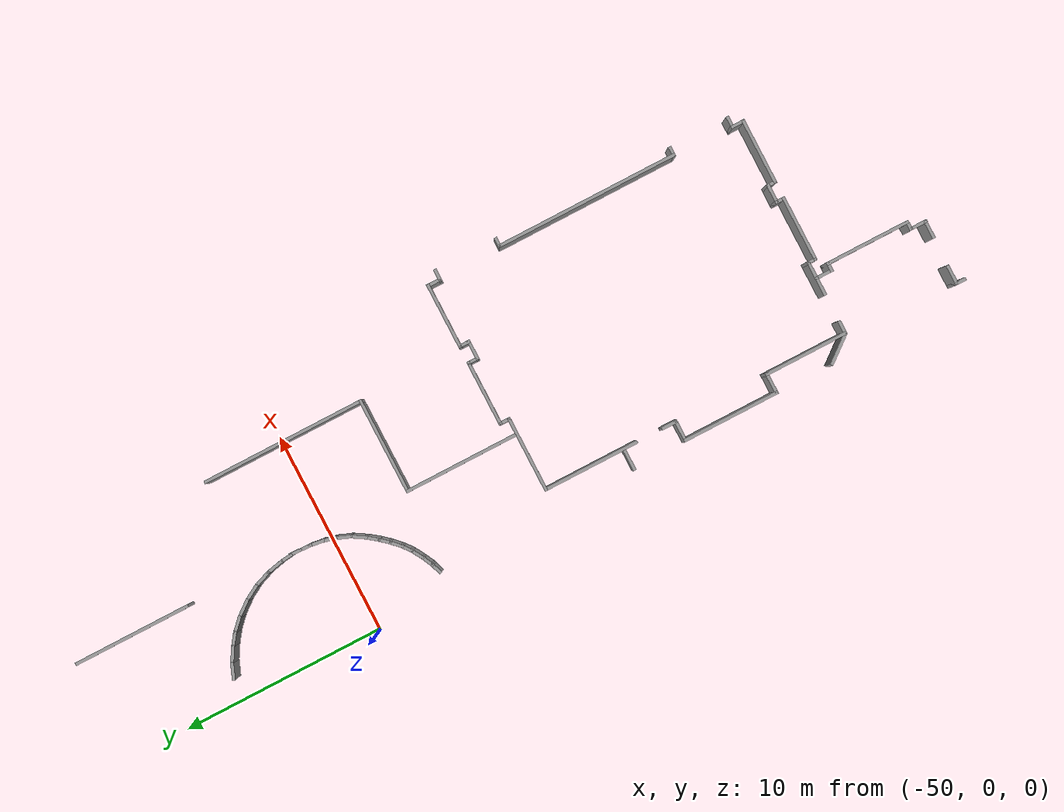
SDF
<sdf version="1.7">
 <model name="TD1_large">
  <pose>-31.5443 -9.14138 0 0 -0 0</pose>
  <link name="Wall_11">
   <collision name="Wall_11_Collision">
    <geometry><box><size>1.75 0.15 2.5</size></box></geometry>
    <pose>0 0 1.25 0 -0 0</pose>
   </collision>
   <visual name="Wall_11_Visual">
    <pose>0 0 1.25 0 -0 0</pose>
    <geometry><box><size>1.75 0.15 2.5</size></box></geometry>
    <material>
     <script><uri>file://media/materials/scripts/gazebo.material</uri><name>Gazebo/Grey</name></script>
     <ambient>1 1 1 1</ambient>
    </material>
    <meta><layer>0</layer></meta>
   </visual>
   <pose>-13.4197 -15.9287 0 0 -0 -4.8e-05</pose>
  </link>
  <link name="Wall_112">
   <collision name="Wall_112_Collision">
    <geometry><box><size>1.57435 0.15 2.5</size></box></geometry>
    <pose>0 0 1.25 0 -0 0</pose>
   </collision>
   <visual name="Wall_112_Visual">
    <pose>0 0 1.25 0 -0 0</pose>
    <geometry><box><size>1.57435 0.15 2.5</size></box></geometry>
    <material>
     <script><uri>file://media/materials/scripts/gazebo.material</uri><name>Gazebo/Grey</name></script>
     <ambient>1 1 1 1</ambient>
    </material>
    <meta><layer>0</layer></meta>
   </visual>
   <pose>-16.7269 -15.3266 0 0 -0 -0.899319</pose>
  </link>
  <link name="Wall_12">
   <collision name="Wall_12_Collision">
    <geometry><box><size>0.5 0.15 2.5</size></box></geometry>
    <pose>0 0 1.25 0 -0 0</pose>
   </collision>
   <visual name="Wall_12_Visual">
    <pose>0 0 1.25 0 -0 0</pose>
    <geometry><box><size>0.5 0.15 2.5</size></box></geometry>
    <material>
     <script><uri>file://media/materials/scripts/gazebo.material</uri><name>Gazebo/Grey</name></script>
     <ambient>1 1 1 1</ambient>
    </material>
    <meta><layer>0</layer></meta>
   </visual>
   <pose>-12.6196 -16.1037 0 0 -0 -1.5708</pose>
  </link>
  <link name="Wall_13">
   <collision name="Wall_13_Collision">
    <geometry><box><size>3.25 0.15 2.5</size></box></geometry>
    <pose>0 0 1.25 0 -0 0</pose>
   </collision>
   <visual name="Wall_13_Visual">
    <pose>0 0 1.25 0 -0 0</pose>
    <geometry><box><size>3.25 0.15 2.5</size></box></geometry>
    <material>
     <script><uri>file://media/materials/scripts/gazebo.material</uri><name>Gazebo/Grey</name></script>
     <ambient>1 1 1 1</ambient>
    </material>
    <meta><layer>0</layer></meta>
   </visual>
   <pose>-11.0696 -16.2787 0 0 -0 0</pose>
  </link>
  <link name="Wall_14">
   <collision name="Wall_14_Collision">
    <geometry><box><size>0.5 0.15 2.5</size></box></geometry>
    <pose>0 0 1.25 0 -0 0</pose>
   </collision>
   <visual name="Wall_14_Visual">
    <pose>0 0 1.25 0 -0 0</pose>
    <geometry><box><size>0.5 0.15 2.5</size></box></geometry>
    <material>
     <script><uri>file://media/materials/scripts/gazebo.material</uri><name>Gazebo/Grey</name></script>
     <ambient>1 1 1 1</ambient>
    </material>
    <meta><layer>0</layer></meta>
   </visual>
   <pose>-9.51964 -16.1037 0 0 -0 1.5708</pose>
  </link>
  <link name="Wall_147">
   <collision name="Wall_147_Collision">
    <geometry><box><size>0.55 0.15 2.5</size></box></geometry>
    <pose>0 0 1.25 0 -0 0</pose>
   </collision>
   <visual name="Wall_147_Visual">
    <pose>0 0 1.25 0 -0 0</pose>
    <geometry><box><size>0.55 0.15 2.5</size></box></geometry>
    <material>
     <script><uri>file://media/materials/scripts/gazebo.material</uri><name>Gazebo/Grey</name></script>
     <ambient>1 1 1 1</ambient>
    </material>
    <meta><layer>0</layer></meta>
   </visual>
   <pose>-16.5597 -21.6446 0 0 -0 1.5708</pose>
  </link>
  <link name="Wall_149">
   <collision name="Wall_149_Collision">
    <geometry><box><size>1 0.15 2.5</size></box></geometry>
    <pose>0 0 1.25 0 -0 0</pose>
   </collision>
   <visual name="Wall_149_Visual">
    <pose>0 0 1.25 0 -0 0</pose>
    <geometry><box><size>1 0.15 2.5</size></box></geometry>
    <material>
     <script><uri>file://media/materials/scripts/gazebo.material</uri><name>Gazebo/Grey</name></script>
     <ambient>1 1 1 1</ambient>
    </material>
    <meta><layer>0</layer></meta>
   </visual>
   <pose>-16.1347 -21.4446 0 0 -0 0</pose>
  </link>
  <link name="Wall_15">
   <collision name="Wall_15_Collision">
    <geometry><box><size>1 0.15 2.5</size></box></geometry>
    <pose>0 0 1.25 0 -0 0</pose>
   </collision>
   <visual name="Wall_15_Visual">
    <pose>0 0 1.25 0 -0 0</pose>
    <geometry><box><size>1 0.15 2.5</size></box></geometry>
    <material>
     <script><uri>file://media/materials/scripts/gazebo.material</uri><name>Gazebo/Grey</name></script>
     <ambient>1 1 1 1</ambient>
    </material>
    <meta><layer>0</layer></meta>
   </visual>
   <pose>-9.09464 -15.9287 0 0 -0 0</pose>
  </link>
  <link name="Wall_152">
   <collision name="Wall_152_Collision">
    <geometry><box><size>0.9 0.15 2.5</size></box></geometry>
    <pose>0 0 1.25 0 -0 0</pose>
   </collision>
   <visual name="Wall_152_Visual">
    <pose>0 0 1.25 0 -0 0</pose>
    <geometry><box><size>0.9 0.15 2.5</size></box></geometry>
    <material>
     <script><uri>file://media/materials/scripts/gazebo.material</uri><name>Gazebo/Grey</name></script>
     <ambient>1 1 1 1</ambient>
    </material>
    <meta><layer>0</layer></meta>
   </visual>
   <pose>-13.8239 -21.4826 0 0 -0 0</pose>
  </link>
  <link name="Wall_155">
   <collision name="Wall_155_Collision">
    <geometry><box><size>0.5 0.15 2.5</size></box></geometry>
    <pose>0 0 1.25 0 -0 0</pose>
   </collision>
   <visual name="Wall_155_Visual">
    <pose>0 0 1.25 0 -0 0</pose>
    <geometry><box><size>0.5 0.15 2.5</size></box></geometry>
    <material>
     <script><uri>file://media/materials/scripts/gazebo.material</uri><name>Gazebo/Grey</name></script>
     <ambient>1 1 1 1</ambient>
    </material>
    <meta><layer>0</layer></meta>
   </visual>
   <pose>-13.2347 -20.7446 0 0 -0 0</pose>
  </link>
  <link name="Wall_157">
   <collision name="Wall_157_Collision">
    <geometry><box><size>0.9 0.15 2.5</size></box></geometry>
    <pose>0 0 1.25 0 -0 0</pose>
   </collision>
   <visual name="Wall_157_Visual">
    <pose>0 0 1.25 0 -0 0</pose>
    <geometry><box><size>0.9 0.15 2.5</size></box></geometry>
    <material>
     <script><uri>file://media/materials/scripts/gazebo.material</uri><name>Gazebo/Grey</name></script>
     <ambient>1 1 1 1</ambient>
    </material>
    <meta><layer>0</layer></meta>
   </visual>
   <pose>-13.4097 -21.1196 0 0 -0 -1.5708</pose>
  </link>
  <link name="Wall_159">
   <collision name="Wall_159_Collision">
    <geometry><box><size>4.2 0.15 2.5</size></box></geometry>
    <pose>0 0 1.25 0 -0 0</pose>
   </collision>
   <visual name="Wall_159_Visual">
    <pose>0 0 1.25 0 -0 0</pose>
    <geometry><box><size>4.2 0.15 2.5</size></box></geometry>
    <material>
     <script><uri>file://media/materials/scripts/gazebo.material</uri><name>Gazebo/Grey</name></script>
     <ambient>1 1 1 1</ambient>
    </material>
    <meta><layer>0</layer></meta>
   </visual>
   <pose>-13.0597 -18.7196 0 0 -0 1.5708</pose>
  </link>
  <link name="Wall_16">
   <collision name="Wall_16_Collision">
    <geometry><box><size>0.5 0.15 2.5</size></box></geometry>
    <pose>0 0 1.25 0 -0 0</pose>
   </collision>
   <visual name="Wall_16_Visual">
    <pose>0 0 1.25 0 -0 0</pose>
    <geometry><box><size>0.5 0.15 2.5</size></box></geometry>
    <material>
     <script><uri>file://media/materials/scripts/gazebo.material</uri><name>Gazebo/Grey</name></script>
     <ambient>1 1 1 1</ambient>
    </material>
    <meta><layer>0</layer></meta>
   </visual>
   <pose>-8.66964 -16.1037 0 0 -0 -1.5708</pose>
  </link>
  <link name="Wall_161">
   <collision name="Wall_161_Collision">
    <geometry><box><size>0.5 0.15 2.5</size></box></geometry>
    <pose>0 0 1.25 0 -0 0</pose>
   </collision>
   <visual name="Wall_161_Visual">
    <pose>0 0 1.25 0 -0 0</pose>
    <geometry><box><size>0.5 0.15 2.5</size></box></geometry>
    <material>
     <script><uri>file://media/materials/scripts/gazebo.material</uri><name>Gazebo/Grey</name></script>
     <ambient>1 1 1 1</ambient>
    </material>
    <meta><layer>0</layer></meta>
   </visual>
   <pose>-13.2347 -16.6946 0 0 -0 3.14159</pose>
  </link>
  <link name="Wall_162">
   <collision name="Wall_162_Collision">
    <geometry><box><size>0.9 0.15 2.5</size></box></geometry>
    <pose>0 0 1.25 0 -0 0</pose>
   </collision>
   <visual name="Wall_162_Visual">
    <pose>0 0 1.25 0 -0 0</pose>
    <geometry><box><size>0.9 0.15 2.5</size></box></geometry>
    <material>
     <script><uri>file://media/materials/scripts/gazebo.material</uri><name>Gazebo/Grey</name></script>
     <ambient>1 1 1 1</ambient>
    </material>
    <meta><layer>0</layer></meta>
   </visual>
   <pose>-13.4097 -16.3196 0 0 -0 1.5708</pose>
  </link>
  <link name="Wall_164">
   <collision name="Wall_164_Collision">
    <geometry><box><size>5.6 0.15 2.5</size></box></geometry>
    <pose>0 0 1.25 0 -0 0</pose>
   </collision>
   <visual name="Wall_164_Visual">
    <pose>0 0 1.25 0 -0 0</pose>
    <geometry><box><size>5.6 0.15 2.5</size></box></geometry>
    <material>
     <script><uri>file://media/materials/scripts/gazebo.material</uri><name>Gazebo/Grey</name></script>
     <ambient>1 1 1 1</ambient>
    </material>
    <meta><layer>0</layer></meta>
   </visual>
   <pose>-13.3873 2.23327 0 0 -0 -1.5708</pose>
  </link>
  <link name="Wall_166">
   <collision name="Wall_166_Collision">
    <geometry><box><size>4.75 0.15 2.5</size></box></geometry>
    <pose>0 0 1.25 0 -0 0</pose>
   </collision>
   <visual name="Wall_166_Visual">
    <pose>0 0 1.25 0 -0 0</pose>
    <geometry><box><size>4.75 0.15 2.5</size></box></geometry>
    <material>
     <script><uri>file://media/materials/scripts/gazebo.material</uri><name>Gazebo/Grey</name></script>
     <ambient>1 1 1 1</ambient>
    </material>
    <meta><layer>0</layer></meta>
   </visual>
   <pose>-11.0873 4.95827 0 0 -0 0</pose>
  </link>
  <link name="Wall_168">
   <collision name="Wall_168_Collision">
    <geometry><box><size>8.05 0.15 2.5</size></box></geometry>
    <pose>0 0 1.25 0 -0 0</pose>
   </collision>
   <visual name="Wall_168_Visual">
    <pose>0 0 1.25 0 -0 0</pose>
    <geometry><box><size>8.05 0.15 2.5</size></box></geometry>
    <material>
     <script><uri>file://media/materials/scripts/gazebo.material</uri><name>Gazebo/Grey</name></script>
     <ambient>1 1 1 1</ambient>
    </material>
    <meta><layer>0</layer></meta>
   </visual>
   <pose>-8.78731 8.90827 0 0 -0 1.5708</pose>
  </link>
  <link name="Wall_17">
   <collision name="Wall_17_Collision">
    <geometry><box><size>3.25 0.15 2.5</size></box></geometry>
    <pose>0 0 1.25 0 -0 0</pose>
   </collision>
   <visual name="Wall_17_Visual">
    <pose>0 0 1.25 0 -0 0</pose>
    <geometry><box><size>3.25 0.15 2.5</size></box></geometry>
    <material>
     <script><uri>file://media/materials/scripts/gazebo.material</uri><name>Gazebo/Grey</name></script>
     <ambient>1 1 1 1</ambient>
    </material>
    <meta><layer>0</layer></meta>
   </visual>
   <pose>-7.11964 -16.2787 0 0 -0 0</pose>
  </link>
  <link name="Wall_18">
   <collision name="Wall_18_Collision">
    <geometry><box><size>0.7 0.15 2.5</size></box></geometry>
    <pose>0 0 1.25 0 -0 0</pose>
   </collision>
   <visual name="Wall_18_Visual">
    <pose>0 0 1.25 0 -0 0</pose>
    <geometry><box><size>0.7 0.15 2.5</size></box></geometry>
    <material>
     <script><uri>file://media/materials/scripts/gazebo.material</uri><name>Gazebo/Grey</name></script>
     <ambient>1 1 1 1</ambient>
    </material>
    <meta><layer>0</layer></meta>
   </visual>
   <pose>-5.56964 -16.0037 0 0 -0 1.5708</pose>
  </link>
  <link name="Wall_20">
   <collision name="Wall_20_Collision">
    <geometry><box><size>0.6 0.15 2.5</size></box></geometry>
    <pose>0 0 1.25 0 -0 0</pose>
   </collision>
   <visual name="Wall_20_Visual">
    <pose>0 0 1.25 0 -0 0</pose>
    <geometry><box><size>0.6 0.15 2.5</size></box></geometry>
    <material>
     <script><uri>file://media/materials/scripts/gazebo.material</uri><name>Gazebo/Grey</name></script>
     <ambient>1 1 1 1</ambient>
    </material>
    <meta><layer>0</layer></meta>
   </visual>
   <pose>-5.34464 -15.7287 0 0 -0 0</pose>
  </link>
  <link name="Wall_200">
   <collision name="Wall_200_Collision">
    <geometry><box><size>5.75 0.15 2.5</size></box></geometry>
    <pose>0 0 1.25 0 -0 0</pose>
   </collision>
   <visual name="Wall_200_Visual">
    <pose>0 0 1.25 0 -0 0</pose>
    <geometry><box><size>5.75 0.15 2.5</size></box></geometry>
    <material>
     <script><uri>file://media/materials/scripts/gazebo.material</uri><name>Gazebo/Grey</name></script>
     <ambient>1 1 1 1</ambient>
    </material>
    <meta><layer>0</layer></meta>
   </visual>
   <pose>-13.3873 19.045 0 0 -0 1.5708</pose>
  </link>
  <link name="Wall_226">
   <collision name="Wall_226_Collision">
    <geometry><box><size>0.845843 0.15 2.5</size></box></geometry>
    <pose>0 0 1.25 0 -0 0</pose>
   </collision>
   <visual name="Wall_226_Visual">
    <pose>0 0 1.25 0 -0 0</pose>
    <geometry><box><size>0.845843 0.15 2.5</size></box></geometry>
    <material>
     <script><uri>file://media/materials/scripts/gazebo.material</uri><name>Gazebo/Grey</name></script>
     <ambient>1 1 1 1</ambient>
    </material>
    <meta><layer>0</layer></meta>
   </visual>
   <pose>-16.9497 15.7457 0 0 -0 -0.374334</pose>
  </link>
  <link name="Wall_227">
   <collision name="Wall_227_Collision">
    <geometry><box><size>0.917591 0.15 2.5</size></box></geometry>
    <pose>0 0 1.25 0 -0 0</pose>
   </collision>
   <visual name="Wall_227_Visual">
    <pose>0 0 1.25 0 -0 0</pose>
    <geometry><box><size>0.917591 0.15 2.5</size></box></geometry>
    <material>
     <script><uri>file://media/materials/scripts/gazebo.material</uri><name>Gazebo/Grey</name></script>
     <ambient>1 1 1 1</ambient>
    </material>
    <meta><layer>0</layer></meta>
   </visual>
   <pose>-16.2962 15.4218 0 0 -0 -0.537836</pose>
  </link>
  <link name="Wall_228">
   <collision name="Wall_228_Collision">
    <geometry><box><size>0.795381 0.15 2.5</size></box></geometry>
    <pose>0 0 1.25 0 -0 0</pose>
   </collision>
   <visual name="Wall_228_Visual">
    <pose>0 0 1.25 0 -0 0</pose>
    <geometry><box><size>0.795381 0.15 2.5</size></box></geometry>
    <material>
     <script><uri>file://media/materials/scripts/gazebo.material</uri><name>Gazebo/Grey</name></script>
     <ambient>1 1 1 1</ambient>
    </material>
    <meta><layer>0</layer></meta>
   </visual>
   <pose>-15.7064 15.0344 0 0 -0 -0.632749</pose>
  </link>
  <link name="Wall_229">
   <collision name="Wall_229_Collision">
    <geometry><box><size>0.869841 0.15 2.5</size></box></geometry>
    <pose>0 0 1.25 0 -0 0</pose>
   </collision>
   <visual name="Wall_229_Visual">
    <pose>0 0 1.25 0 -0 0</pose>
    <geometry><box><size>0.869841 0.15 2.5</size></box></geometry>
    <material>
     <script><uri>file://media/materials/scripts/gazebo.material</uri><name>Gazebo/Grey</name></script>
     <ambient>1 1 1 1</ambient>
    </material>
    <meta><layer>0</layer></meta>
   </visual>
   <pose>-15.186 14.5949 0 0 -0 -0.762675</pose>
  </link>
  <link name="Wall_230">
   <collision name="Wall_230_Collision">
    <geometry><box><size>0.989899 0.15 2.5</size></box></geometry>
    <pose>0 0 1.25 0 -0 0</pose>
   </collision>
   <visual name="Wall_230_Visual">
    <pose>0 0 1.25 0 -0 0</pose>
    <geometry><box><size>0.989899 0.15 2.5</size></box></geometry>
    <material>
     <script><uri>file://media/materials/scripts/gazebo.material</uri><name>Gazebo/Grey</name></script>
     <ambient>1 1 1 1</ambient>
    </material>
    <meta><layer>0</layer></meta>
   </visual>
   <pose>-14.6655 14.0166 0 0 -0 -0.902507</pose>
  </link>
  <link name="Wall_231">
   <collision name="Wall_231_Collision">
    <geometry><box><size>0.911731 0.15 2.5</size></box></geometry>
    <pose>0 0 1.25 0 -0 0</pose>
   </collision>
   <visual name="Wall_231_Visual">
    <pose>0 0 1.25 0 -0 0</pose>
    <geometry><box><size>0.911731 0.15 2.5</size></box></geometry>
    <material>
     <script><uri>file://media/materials/scripts/gazebo.material</uri><name>Gazebo/Grey</name></script>
     <ambient>1 1 1 1</ambient>
    </material>
    <meta><layer>0</layer></meta>
   </visual>
   <pose>-14.2145 13.3574 0 0 -0 -1.046</pose>
  </link>
  <link name="Wall_232">
   <collision name="Wall_232_Collision">
    <geometry><box><size>0.966235 0.15 2.5</size></box></geometry>
    <pose>0 0 1.25 0 -0 0</pose>
   </collision>
   <visual name="Wall_232_Visual">
    <pose>0 0 1.25 0 -0 0</pose>
    <geometry><box><size>0.966235 0.15 2.5</size></box></geometry>
    <material>
     <script><uri>file://media/materials/scripts/gazebo.material</uri><name>Gazebo/Grey</name></script>
     <ambient>1 1 1 1</ambient>
    </material>
    <meta><layer>0</layer></meta>
   </visual>
   <pose>-13.8791 12.6462 0 0 -0 -1.20871</pose>
  </link>
  <link name="Wall_233">
   <collision name="Wall_233_Collision">
    <geometry><box><size>0.907682 0.15 2.5</size></box></geometry>
    <pose>0 0 1.25 0 -0 0</pose>
   </collision>
   <visual name="Wall_233_Visual">
    <pose>0 0 1.25 0 -0 0</pose>
    <geometry><box><size>0.907682 0.15 2.5</size></box></geometry>
    <material>
     <script><uri>file://media/materials/scripts/gazebo.material</uri><name>Gazebo/Grey</name></script>
     <ambient>1 1 1 1</ambient>
    </material>
    <meta><layer>0</layer></meta>
   </visual>
   <pose>-13.6536 11.8944 0 0 -0 -1.35544</pose>
  </link>
  <link name="Wall_234">
   <collision name="Wall_234_Collision">
    <geometry><box><size>0.68651 0.15 2.5</size></box></geometry>
    <pose>0 0 1.25 0 -0 0</pose>
   </collision>
   <visual name="Wall_234_Visual">
    <pose>0 0 1.25 0 -0 0</pose>
    <geometry><box><size>0.68651 0.15 2.5</size></box></geometry>
    <material>
     <script><uri>file://media/materials/scripts/gazebo.material</uri><name>Gazebo/Grey</name></script>
     <ambient>1 1 1 1</ambient>
    </material>
    <meta><layer>0</layer></meta>
   </visual>
   <pose>-13.5379 11.2583 0 0 -0 -1.44109</pose>
  </link>
  <link name="Wall_236">
   <collision name="Wall_236_Collision">
    <geometry><box><size>0.61319 0.15 2.5</size></box></geometry>
    <pose>0 0 1.25 0 -0 0</pose>
   </collision>
   <visual name="Wall_236_Visual">
    <pose>0 0 1.25 0 -0 0</pose>
    <geometry><box><size>0.61319 0.15 2.5</size></box></geometry>
    <material>
     <script><uri>file://media/materials/scripts/gazebo.material</uri><name>Gazebo/Grey</name></script>
     <ambient>1 1 1 1</ambient>
    </material>
    <meta><layer>0</layer></meta>
   </visual>
   <pose>-13.4974 10.7379 0 0 -0 -1.59579</pose>
  </link>
  <link name="Wall_237">
   <collision name="Wall_237_Collision">
    <geometry><box><size>0.647846 0.15 2.5</size></box></geometry>
    <pose>0 0 1.25 0 -0 0</pose>
   </collision>
   <visual name="Wall_237_Visual">
    <pose>0 0 1.25 0 -0 0</pose>
    <geometry><box><size>0.647846 0.15 2.5</size></box></geometry>
    <material>
     <script><uri>file://media/materials/scripts/gazebo.material</uri><name>Gazebo/Grey</name></script>
     <ambient>1 1 1 1</ambient>
    </material>
    <meta><layer>0</layer></meta>
   </visual>
   <pose>-13.5148 10.2579 0 0 -0 -1.61727</pose>
  </link>
  <link name="Wall_238">
   <collision name="Wall_238_Collision">
    <geometry><box><size>0.75682 0.15 2.5</size></box></geometry>
    <pose>0 0 1.25 0 -0 0</pose>
   </collision>
   <visual name="Wall_238_Visual">
    <pose>0 0 1.25 0 -0 0</pose>
    <geometry><box><size>0.75682 0.15 2.5</size></box></geometry>
    <material>
     <script><uri>file://media/materials/scripts/gazebo.material</uri><name>Gazebo/Grey</name></script>
     <ambient>1 1 1 1</ambient>
    </material>
    <meta><layer>0</layer></meta>
   </visual>
   <pose>-13.5668 9.70857 0 0 -0 -1.70461</pose>
  </link>
  <link name="Wall_239">
   <collision name="Wall_239_Collision">
    <geometry><box><size>0.736305 0.15 2.5</size></box></geometry>
    <pose>0 0 1.25 0 -0 0</pose>
   </collision>
   <visual name="Wall_239_Visual">
    <pose>0 0 1.25 0 -0 0</pose>
    <geometry><box><size>0.736305 0.15 2.5</size></box></geometry>
    <material>
     <script><uri>file://media/materials/scripts/gazebo.material</uri><name>Gazebo/Grey</name></script>
     <ambient>1 1 1 1</ambient>
    </material>
    <meta><layer>0</layer></meta>
   </visual>
   <pose>-13.6825 9.12452 0 0 -0 -1.83013</pose>
  </link>
  <link name="Wall_240">
   <collision name="Wall_240_Collision">
    <geometry><box><size>0.845843 0.15 2.5</size></box></geometry>
    <pose>0 0 1.25 0 -0 0</pose>
   </collision>
   <visual name="Wall_240_Visual">
    <pose>0 0 1.25 0 -0 0</pose>
    <geometry><box><size>0.845843 0.15 2.5</size></box></geometry>
    <material>
     <script><uri>file://media/materials/scripts/gazebo.material</uri><name>Gazebo/Grey</name></script>
     <ambient>1 1 1 1</ambient>
    </material>
    <meta><layer>0</layer></meta>
   </visual>
   <pose>-13.8849 8.51734 0 0 -0 -1.94513</pose>
  </link>
  <link name="Wall_241">
   <collision name="Wall_241_Collision">
    <geometry><box><size>0.856147 0.15 2.5</size></box></geometry>
    <pose>0 0 1.25 0 -0 0</pose>
   </collision>
   <visual name="Wall_241_Visual">
    <pose>0 0 1.25 0 -0 0</pose>
    <geometry><box><size>0.856147 0.15 2.5</size></box></geometry>
    <material>
     <script><uri>file://media/materials/scripts/gazebo.material</uri><name>Gazebo/Grey</name></script>
     <ambient>1 1 1 1</ambient>
    </material>
    <meta><layer>0</layer></meta>
   </visual>
   <pose>-14.1971 7.89282 0 0 -0 -2.12245</pose>
  </link>
  <link name="Wall_242">
   <collision name="Wall_242_Collision">
    <geometry><box><size>0.728265 0.15 2.5</size></box></geometry>
    <pose>0 0 1.25 0 -0 0</pose>
   </collision>
   <visual name="Wall_242_Visual">
    <pose>0 0 1.25 0 -0 0</pose>
    <geometry><box><size>0.728265 0.15 2.5</size></box></geometry>
    <material>
     <script><uri>file://media/materials/scripts/gazebo.material</uri><name>Gazebo/Grey</name></script>
     <ambient>1 1 1 1</ambient>
    </material>
    <meta><layer>0</layer></meta>
   </visual>
   <pose>-14.5556 7.36081 0 0 -0 -2.2143</pose>
  </link>
  <link name="Wall_245">
   <collision name="Wall_245_Collision">
    <geometry><box><size>0.634226 0.15 2.5</size></box></geometry>
    <pose>0 0 1.25 0 -0 0</pose>
   </collision>
   <visual name="Wall_245_Visual">
    <pose>0 0 1.25 0 -0 0</pose>
    <geometry><box><size>0.634226 0.15 2.5</size></box></geometry>
    <material>
     <script><uri>file://media/materials/scripts/gazebo.material</uri><name>Gazebo/Grey</name></script>
     <ambient>1 1 1 1</ambient>
    </material>
    <meta><layer>0</layer></meta>
   </visual>
   <pose>-14.9084 6.9329 0 0 -0 -2.27165</pose>
  </link>
  <link name="Wall_246">
   <collision name="Wall_246_Collision">
    <geometry><box><size>0.747043 0.15 2.5</size></box></geometry>
    <pose>0 0 1.25 0 -0 0</pose>
   </collision>
   <visual name="Wall_246_Visual">
    <pose>0 0 1.25 0 -0 0</pose>
    <geometry><box><size>0.747043 0.15 2.5</size></box></geometry>
    <material>
     <script><uri>file://media/materials/scripts/gazebo.material</uri><name>Gazebo/Grey</name></script>
     <ambient>1 1 1 1</ambient>
    </material>
    <meta><layer>0</layer></meta>
   </visual>
   <pose>-15.2785 6.53968 0 0 -0 -2.36989</pose>
  </link>
  <link name="Wall_247">
   <collision name="Wall_247_Collision">
    <geometry><box><size>0.619642 0.15 2.5</size></box></geometry>
    <pose>0 0 1.25 0 -0 0</pose>
   </collision>
   <visual name="Wall_247_Visual">
    <pose>0 0 1.25 0 -0 0</pose>
    <geometry><box><size>0.619642 0.15 2.5</size></box></geometry>
    <material>
     <script><uri>file://media/materials/scripts/gazebo.material</uri><name>Gazebo/Grey</name></script>
     <ambient>1 1 1 1</ambient>
    </material>
    <meta><layer>0</layer></meta>
   </visual>
   <pose>-15.6775 6.18694 0 0 -0 -2.47839</pose>
  </link>
  <link name="Wall_248">
   <collision name="Wall_248_Collision">
    <geometry><box><size>0.751062 0.15 2.5</size></box></geometry>
    <pose>0 0 1.25 0 -0 0</pose>
   </collision>
   <visual name="Wall_248_Visual">
    <pose>0 0 1.25 0 -0 0</pose>
    <geometry><box><size>0.751062 0.15 2.5</size></box></geometry>
    <material>
     <script><uri>file://media/materials/scripts/gazebo.material</uri><name>Gazebo/Grey</name></script>
     <ambient>1 1 1 1</ambient>
    </material>
    <meta><layer>0</layer></meta>
   </visual>
   <pose>-16.1227 5.89202 0 0 -0 -2.61767</pose>
  </link>
  <link name="Wall_249">
   <collision name="Wall_249_Collision">
    <geometry><box><size>0.677586 0.15 2.5</size></box></geometry>
    <pose>0 0 1.25 0 -0 0</pose>
   </collision>
   <visual name="Wall_249_Visual">
    <pose>0 0 1.25 0 -0 0</pose>
    <geometry><box><size>0.677586 0.15 2.5</size></box></geometry>
    <material>
     <script><uri>file://media/materials/scripts/gazebo.material</uri><name>Gazebo/Grey</name></script>
     <ambient>1 1 1 1</ambient>
    </material>
    <meta><layer>0</layer></meta>
   </visual>
   <pose>-16.62 5.62602 0 0 -0 -2.68775</pose>
  </link>
  <link name="Wall_250">
   <collision name="Wall_250_Collision">
    <geometry><box><size>0.625445 0.15 2.5</size></box></geometry>
    <pose>0 0 1.25 0 -0 0</pose>
   </collision>
   <visual name="Wall_250_Visual">
    <pose>0 0 1.25 0 -0 0</pose>
    <geometry><box><size>0.625445 0.15 2.5</size></box></geometry>
    <material>
     <script><uri>file://media/materials/scripts/gazebo.material</uri><name>Gazebo/Grey</name></script>
     <ambient>1 1 1 1</ambient>
    </material>
    <meta><layer>0</layer></meta>
   </visual>
   <pose>-17.0827 5.43519 0 0 -0 -2.81984</pose>
  </link>
  <link name="Wall_26">
   <collision name="Wall_26_Collision">
    <geometry><box><size>0.5 0.15 2.5</size></box></geometry>
    <pose>0 0 1.25 0 -0 0</pose>
   </collision>
   <visual name="Wall_26_Visual">
    <pose>0 0 1.25 0 -0 0</pose>
    <geometry><box><size>0.5 0.15 2.5</size></box></geometry>
    <material>
     <script><uri>file://media/materials/scripts/gazebo.material</uri><name>Gazebo/Grey</name></script>
     <ambient>1 1 1 1</ambient>
    </material>
    <meta><layer>0</layer></meta>
   </visual>
   <pose>-5.29464 -12.7787 0 0 -0 3.14159</pose>
  </link>
  <link name="Wall_30">
   <collision name="Wall_30_Collision">
    <geometry><box><size>9.05 0.15 2.5</size></box></geometry>
    <pose>0 0 1.25 0 -0 0</pose>
   </collision>
   <visual name="Wall_30_Visual">
    <pose>0 0 1.25 0 -0 0</pose>
    <geometry><box><size>9.05 0.15 2.5</size></box></geometry>
    <material>
     <script><uri>file://media/materials/scripts/gazebo.material</uri><name>Gazebo/Grey</name></script>
     <ambient>1 1 1 1</ambient>
    </material>
    <meta><layer>0</layer></meta>
   </visual>
   <pose>-5.46969 -8.32866 0 0 -0 1.57081</pose>
  </link>
  <link name="Wall_32">
   <collision name="Wall_32_Collision">
    <geometry><box><size>0.5 0.15 2.5</size></box></geometry>
    <pose>0 0 1.25 0 -0 0</pose>
   </collision>
   <visual name="Wall_32_Visual">
    <pose>0 0 1.25 0 -0 0</pose>
    <geometry><box><size>0.5 0.15 2.5</size></box></geometry>
    <material>
     <script><uri>file://media/materials/scripts/gazebo.material</uri><name>Gazebo/Grey</name></script>
     <ambient>1 1 1 1</ambient>
    </material>
    <meta><layer>0</layer></meta>
   </visual>
   <pose>-5.29473 -3.87862 0 0 -0 0</pose>
  </link>
  <link name="Wall_35">
   <collision name="Wall_35_Collision">
    <geometry><box><size>0.6 0.15 2.5</size></box></geometry>
    <pose>0 0 1.25 0 -0 0</pose>
   </collision>
   <visual name="Wall_35_Visual">
    <pose>0 0 1.25 0 -0 0</pose>
    <geometry><box><size>0.6 0.15 2.5</size></box></geometry>
    <material>
     <script><uri>file://media/materials/scripts/gazebo.material</uri><name>Gazebo/Grey</name></script>
     <ambient>1 1 1 1</ambient>
    </material>
    <meta><layer>0</layer></meta>
   </visual>
   <pose>-5.34473 -0.77862 0 0 -0 3.14159</pose>
  </link>
  <link name="Wall_37">
   <collision name="Wall_37_Collision">
    <geometry><box><size>0.75 0.15 2.5</size></box></geometry>
    <pose>0 0 1.25 0 -0 0</pose>
   </collision>
   <visual name="Wall_37_Visual">
    <pose>0 0 1.25 0 -0 0</pose>
    <geometry><box><size>0.75 0.15 2.5</size></box></geometry>
    <material>
     <script><uri>file://media/materials/scripts/gazebo.material</uri><name>Gazebo/Grey</name></script>
     <ambient>1 1 1 1</ambient>
    </material>
    <meta><layer>0</layer></meta>
   </visual>
   <pose>-5.56973 -0.47862 0 0 -0 1.5708</pose>
  </link>
  <link name="Wall_38">
   <collision name="Wall_38_Collision">
    <geometry><box><size>3.25 0.15 2.5</size></box></geometry>
    <pose>0 0 1.25 0 -0 0</pose>
   </collision>
   <visual name="Wall_38_Visual">
    <pose>0 0 1.25 0 -0 0</pose>
    <geometry><box><size>3.25 0.15 2.5</size></box></geometry>
    <material>
     <script><uri>file://media/materials/scripts/gazebo.material</uri><name>Gazebo/Grey</name></script>
     <ambient>1 1 1 1</ambient>
    </material>
    <meta><layer>0</layer></meta>
   </visual>
   <pose>-7.11973 -0.178619 0 0 -0 3.14159</pose>
  </link>
  <link name="Wall_39">
   <collision name="Wall_39_Collision">
    <geometry><box><size>0.6 0.15 2.5</size></box></geometry>
    <pose>0 0 1.25 0 -0 0</pose>
   </collision>
   <visual name="Wall_39_Visual">
    <pose>0 0 1.25 0 -0 0</pose>
    <geometry><box><size>0.6 0.15 2.5</size></box></geometry>
    <material>
     <script><uri>file://media/materials/scripts/gazebo.material</uri><name>Gazebo/Grey</name></script>
     <ambient>1 1 1 1</ambient>
    </material>
    <meta><layer>0</layer></meta>
   </visual>
   <pose>-8.66973 -0.40362 0 0 -0 -1.5708</pose>
  </link>
  <link name="Wall_42">
   <collision name="Wall_42_Collision">
    <geometry><box><size>1 0.15 2.5</size></box></geometry>
    <pose>0 0 1.25 0 -0 0</pose>
   </collision>
   <visual name="Wall_42_Visual">
    <pose>0 0 1.25 0 -0 0</pose>
    <geometry><box><size>1 0.15 2.5</size></box></geometry>
    <material>
     <script><uri>file://media/materials/scripts/gazebo.material</uri><name>Gazebo/Grey</name></script>
     <ambient>1 1 1 1</ambient>
    </material>
    <meta><layer>0</layer></meta>
   </visual>
   <pose>-9.09473 -0.62862 0 0 -0 3.14159</pose>
  </link>
  <link name="Wall_43">
   <collision name="Wall_43_Collision">
    <geometry><box><size>0.6 0.15 2.5</size></box></geometry>
    <pose>0 0 1.25 0 -0 0</pose>
   </collision>
   <visual name="Wall_43_Visual">
    <pose>0 0 1.25 0 -0 0</pose>
    <geometry><box><size>0.6 0.15 2.5</size></box></geometry>
    <material>
     <script><uri>file://media/materials/scripts/gazebo.material</uri><name>Gazebo/Grey</name></script>
     <ambient>1 1 1 1</ambient>
    </material>
    <meta><layer>0</layer></meta>
   </visual>
   <pose>-9.51973 -0.40362 0 0 -0 1.5708</pose>
  </link>
  <link name="Wall_45">
   <collision name="Wall_45_Collision">
    <geometry><box><size>3.25 0.15 2.5</size></box></geometry>
    <pose>0 0 1.25 0 -0 0</pose>
   </collision>
   <visual name="Wall_45_Visual">
    <pose>0 0 1.25 0 -0 0</pose>
    <geometry><box><size>3.25 0.15 2.5</size></box></geometry>
    <material>
     <script><uri>file://media/materials/scripts/gazebo.material</uri><name>Gazebo/Grey</name></script>
     <ambient>1 1 1 1</ambient>
    </material>
    <meta><layer>0</layer></meta>
   </visual>
   <pose>-11.0697 -0.178619 0 0 -0 3.14159</pose>
  </link>
  <link name="Wall_46">
   <collision name="Wall_46_Collision">
    <geometry><box><size>0.6 0.15 2.5</size></box></geometry>
    <pose>0 0 1.25 0 -0 0</pose>
   </collision>
   <visual name="Wall_46_Visual">
    <pose>0 0 1.25 0 -0 0</pose>
    <geometry><box><size>0.6 0.15 2.5</size></box></geometry>
    <material>
     <script><uri>file://media/materials/scripts/gazebo.material</uri><name>Gazebo/Grey</name></script>
     <ambient>1 1 1 1</ambient>
    </material>
    <meta><layer>0</layer></meta>
   </visual>
   <pose>-12.6197 -0.40362 0 0 -0 -1.5708</pose>
  </link>
  <link name="Wall_48">
   <collision name="Wall_48_Collision">
    <geometry><box><size>3.75 0.15 2.5</size></box></geometry>
    <pose>0 0 1.25 0 -0 0</pose>
   </collision>
   <visual name="Wall_48_Visual">
    <pose>0 0 1.25 0 -0 0</pose>
    <geometry><box><size>3.75 0.15 2.5</size></box></geometry>
    <material>
     <script><uri>file://media/materials/scripts/gazebo.material</uri><name>Gazebo/Grey</name></script>
     <ambient>1 1 1 1</ambient>
    </material>
    <meta><layer>0</layer></meta>
   </visual>
   <pose>-14.4197 -0.62862 0 0 -0 3.14159</pose>
  </link>
  <link name="Wall_50">
   <collision name="Wall_50_Collision">
    <geometry><box><size>4.75 0.15 2.5</size></box></geometry>
    <pose>0 0 1.25 0 -0 0</pose>
   </collision>
   <visual name="Wall_50_Visual">
    <pose>0 0 1.25 0 -0 0</pose>
    <geometry><box><size>4.75 0.15 2.5</size></box></geometry>
    <material>
     <script><uri>file://media/materials/scripts/gazebo.material</uri><name>Gazebo/Grey</name></script>
     <ambient>1 1 1 1</ambient>
    </material>
    <meta><layer>0</layer></meta>
   </visual>
   <pose>-16.2197 -2.92862 0 0 -0 -1.5708</pose>
  </link>
  <link name="Wall_52">
   <collision name="Wall_52_Collision">
    <geometry><box><size>0.8 0.15 2.5</size></box></geometry>
    <pose>0 0 1.25 0 -0 0</pose>
   </collision>
   <visual name="Wall_52_Visual">
    <pose>0 0 1.25 0 -0 0</pose>
    <geometry><box><size>0.8 0.15 2.5</size></box></geometry>
    <material>
     <script><uri>file://media/materials/scripts/gazebo.material</uri><name>Gazebo/Grey</name></script>
     <ambient>1 1 1 1</ambient>
    </material>
    <meta><layer>0</layer></meta>
   </visual>
   <pose>-16.22 -6.94401 0 0 -0 -1.5708</pose>
  </link>
  <link name="Wall_54">
   <collision name="Wall_54_Collision">
    <geometry><box><size>1.1 0.15 2.5</size></box></geometry>
    <pose>0 0 1.25 0 -0 0</pose>
   </collision>
   <visual name="Wall_54_Visual">
    <pose>0 0 1.25 0 -0 0</pose>
    <geometry><box><size>1.1 0.15 2.5</size></box></geometry>
    <material>
     <script><uri>file://media/materials/scripts/gazebo.material</uri><name>Gazebo/Grey</name></script>
     <ambient>1 1 1 1</ambient>
    </material>
    <meta><layer>0</layer></meta>
   </visual>
   <pose>-16.695 -7.26901 0 0 -0 3.14159</pose>
  </link>
  <link name="Wall_57">
   <collision name="Wall_57_Collision">
    <geometry><box><size>4.8 0.15 2.5</size></box></geometry>
    <pose>0 0 1.25 0 -0 0</pose>
   </collision>
   <visual name="Wall_57_Visual">
    <pose>0 0 1.25 0 -0 0</pose>
    <geometry><box><size>4.8 0.15 2.5</size></box></geometry>
    <material>
     <script><uri>file://media/materials/scripts/gazebo.material</uri><name>Gazebo/Grey</name></script>
     <ambient>1 1 1 1</ambient>
    </material>
    <meta><layer>0</layer></meta>
   </visual>
   <pose>-17.17 -9.59401 0 0 -0 -1.5708</pose>
  </link>
  <link name="Wall_62">
   <collision name="Wall_62_Collision">
    <geometry><box><size>1.1 0.15 2.5</size></box></geometry>
    <pose>0 0 1.25 0 -0 0</pose>
   </collision>
   <visual name="Wall_62_Visual">
    <pose>0 0 1.25 0 -0 0</pose>
    <geometry><box><size>1.1 0.15 2.5</size></box></geometry>
    <material>
     <script><uri>file://media/materials/scripts/gazebo.material</uri><name>Gazebo/Grey</name></script>
     <ambient>1 1 1 1</ambient>
    </material>
    <meta><layer>0</layer></meta>
   </visual>
   <pose>-16.695 -11.919 0 0 -0 0</pose>
  </link>
  <link name="Wall_67">
   <collision name="Wall_67_Collision">
    <geometry><box><size>0.7 0.15 2.5</size></box></geometry>
    <pose>0 0 1.25 0 -0 0</pose>
   </collision>
   <visual name="Wall_67_Visual">
    <pose>0 0 1.25 0 -0 0</pose>
    <geometry><box><size>0.7 0.15 2.5</size></box></geometry>
    <material>
     <script><uri>file://media/materials/scripts/gazebo.material</uri><name>Gazebo/Grey</name></script>
     <ambient>1 1 1 1</ambient>
    </material>
    <meta><layer>0</layer></meta>
   </visual>
   <pose>-15.9447 -15.9286 0 0 -0 3.14159</pose>
  </link>
  <link name="Wall_69">
   <collision name="Wall_69_Collision">
    <geometry><box><size>4.15992 0.15 2.5</size></box></geometry>
    <pose>0 0 1.25 0 -0 0</pose>
   </collision>
   <visual name="Wall_69_Visual">
    <pose>0 0 1.25 0 -0 0</pose>
    <geometry><box><size>4.15992 0.15 2.5</size></box></geometry>
    <material>
     <script><uri>file://media/materials/scripts/gazebo.material</uri><name>Gazebo/Grey</name></script>
     <ambient>1 1 1 1</ambient>
    </material>
    <meta><layer>0</layer></meta>
   </visual>
   <pose>-16.2199 -13.9238 0 0 -0 -1.57073</pose>
  </link>
  <link name="Wall_78">
   <collision name="Wall_78_Collision">
    <geometry><box><size>1.1 0.15 2.15</size></box></geometry>
    <pose>0 0 1.075 0 -0 0</pose>
   </collision>
   <visual name="Wall_78_Visual">
    <pose>0 0 1.075 0 -0 0</pose>
    <geometry><box><size>1.1 0.15 2.15</size></box></geometry>
    <material>
     <script><uri>file://media/materials/scripts/gazebo.material</uri><name>Gazebo/Grey</name></script>
     <ambient>1 1 1 1</ambient>
    </material>
    <meta><layer>0</layer></meta>
   </visual>
   <pose>-16.7827 -4.61662 0 0 -0 0</pose>
  </link>
  <static>1</static>
 </model>
</sdf>
